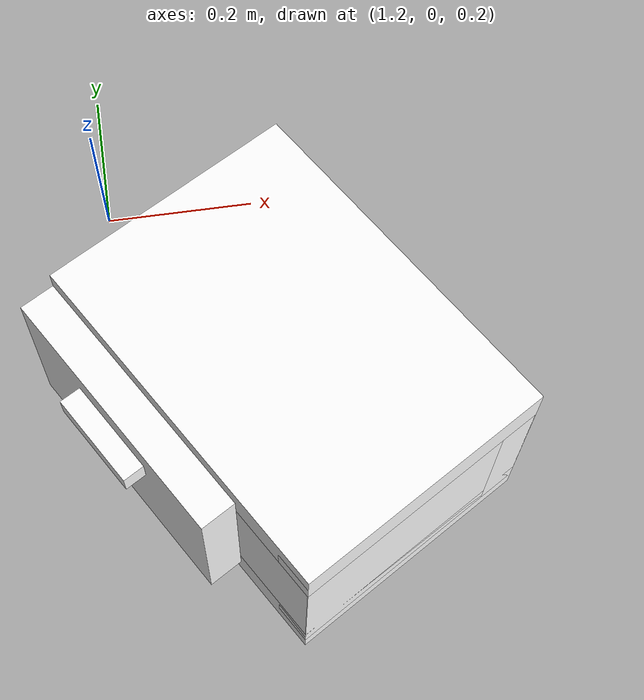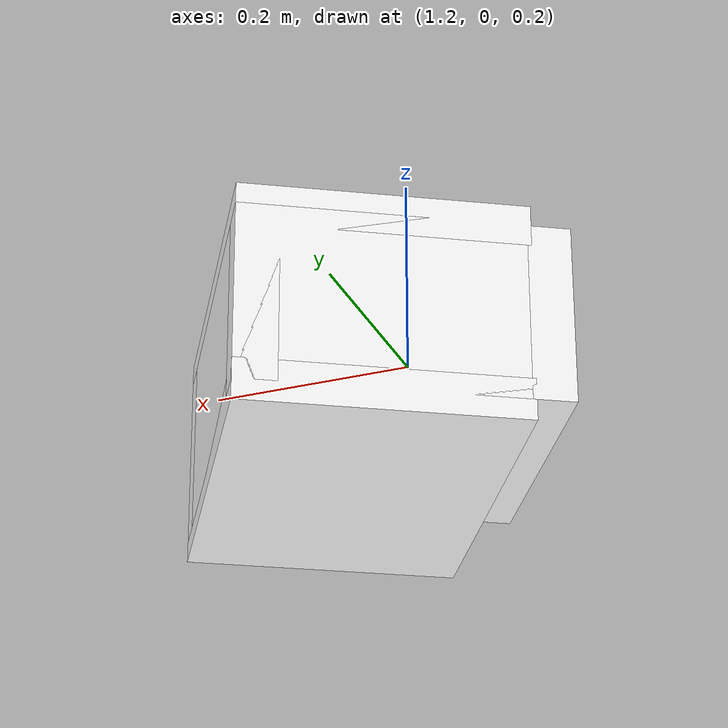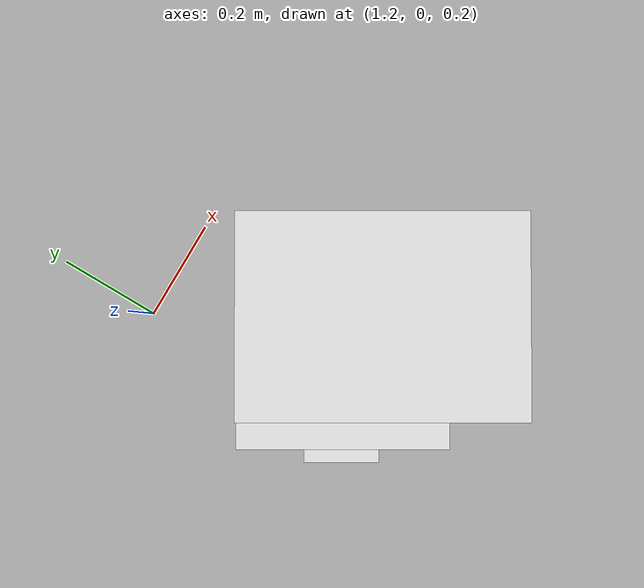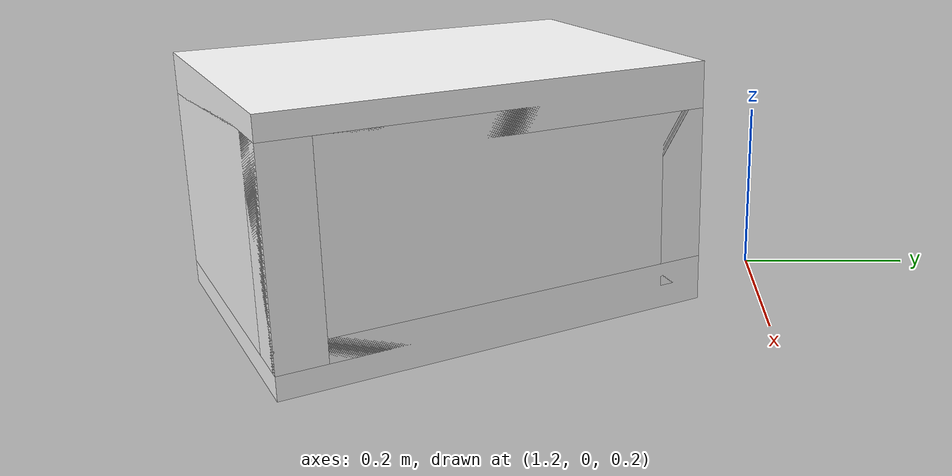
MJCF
<mujoco model="cabinet">
    <compiler angle="radian" eulerseq='zxy' />
    <option gravity = "0 0 0" />
    <option>
        <flag contact = "disable"/>
    </option>
    <statistic	extent="1.0" center="0.0 0.0 0.0"/>
    <visual>
        <map fogstart="3" fogend="5" force="0.1" znear=" 0.100000 " zfar=" 12.000000 "/>
    </visual>
    <size njmax="500" nconmax="100" />
    <actuator>
        <velocity joint="bottom_left_hinge" name="viva_revolution" kv='10'></velocity>
    </actuator>
    <asset>
        <texture builtin="flat" name="tabletex" height="32" width="32" rgb1="1 1 1" type="cube"></texture>
        <texture builtin="flat" name="objtex" height="32" width="32" rgb1="1 1 1" type="cube"></texture>
        <texture builtin="flat" name="handletex" height="32" width="32" rgb1="1 1 1" type="cube"></texture>
        <texture builtin="flat" name="wallpaper" height="32" width="32" rgb1="1 1 1" type="cube"></texture>
        <texture builtin="flat" name="kp" height="32" width="32" rgb1="1 1 1" type="cube"></texture>
        <material name="geomTable" shininess="0.03" specular="0.75" texture="tabletex"></material>
        <material name="geomObj" shininess="0.03" specular="0.75" texture="objtex"></material>
        <material name="geomHandle" shininess="0.03" specular="0.75" texture="handletex"></material>
        <material name="bg" shininess="0.03" specular="0.75" texture="wallpaper"></material>
        <material name="geomKeypad" shininess="0.03" specular="0.75" texture="kp"></material>
    </asset>
    <worldbody>
        <body name="cabinet_bottom" pos= " 1.403338 -0.362130 0.269607 "  quat= " -0.265945 0.000000 0.000000 0.963988" >
            <inertial pos="0 0 0" mass="1" diaginertia="1 1 1" />
            <geom size= " 0.162222 0.226774 0.024377 "  type="box" material="geomObj" name="b"/>
            <body name="cabinet_left" pos= " 0.000000 -0.202397 0.105155 " >
                <inertial pos="0 0 0" mass="1" diaginertia="1 1 1" />
                <geom size= " 0.162222 0.024377 0.105155 "  type="box" material="geomObj" name="c" />
            </body>
            <body name="cabinet_right" pos= " 0.000000 0.202397 0.105155 " >
                <inertial pos="0 0 0" mass="1" diaginertia="1 1 1" />
                <geom size= " 0.162222 0.024377 0.105155 "  type="box" material="geomObj" name="d" />
            </body>
            <body name="cabinet_top" pos= " 0.000000 0.000000 0.210310 " >
                <inertial pos="0 0 0" mass="1" diaginertia="1 1 1" />
                <geom size= " 0.162222 0.226774 0.024377 "  type="box" material="geomObj" name="e"/>
            </body>
            <body name="cabinet_back" pos= " -0.137845 0.000000 0.105155 "  >
                <inertial pos="0 0 0" mass="1" diaginertia="1 1 1" />
                <geom size= " 0.024377 0.226774 0.105155 "  type="box" material="geomObj" name="f" />
            </body>
            <body name="cabinet_keypad" pos= " 0.024377 0.165649 0.105155 " >
                <inertial pos="0 0 0" mass="1" diaginertia="1 1 1" />
                <geom size= " 0.137845 0.060125 0.080778 "  type="box" material="geomKeypad" name="keypizzlemynizzle" />
            </body>
            <body name="cabinet_left_hinge" pos= " 0.162222 -0.060125 0.000000 " >
                <inertial pos= " 0.020000 0.000000 0.105155 "  mass="1" diaginertia="1 1 1" />
                <joint name="bottom_left_hinge" type="hinge" pos="0 0 0" axis="0 1 0" limited="true" range= "0 2.3"  />
                <geom size= " 0.024377 0.166649 0.105155 "  pos= " 0.020000 0.000000 0.105155 "  type="box" material="geomObj" name="g"/>
                <body name="handle_link" pos= " 0.040555 0.000000 0.161556 " >
                    <inertial pos="0 0 0" mass="1" diaginertia="1 1 1" />
                    <geom size= " 0.030651 0.060125 0.013430 "  type="box" material="geomHandle" name="h"/>
                </body>
            </body>
        </body>
        <body name="external_camera_body_0" pos="0.0 0 0.00">
            <camera euler="-1.57 1.57 0.0" fovy=" 54.280851 " name="external_camera_0" pos="0.0 0 0"></camera>
            <inertial pos= " 0.00 0.0 0.000000 " mass="1" diaginertia="1 1 1" />
            <joint name="cam_j" pos="0.0 0 0" axis = "1 0 0" type="free" />
        </body>
    </worldbody>
</mujoco>
